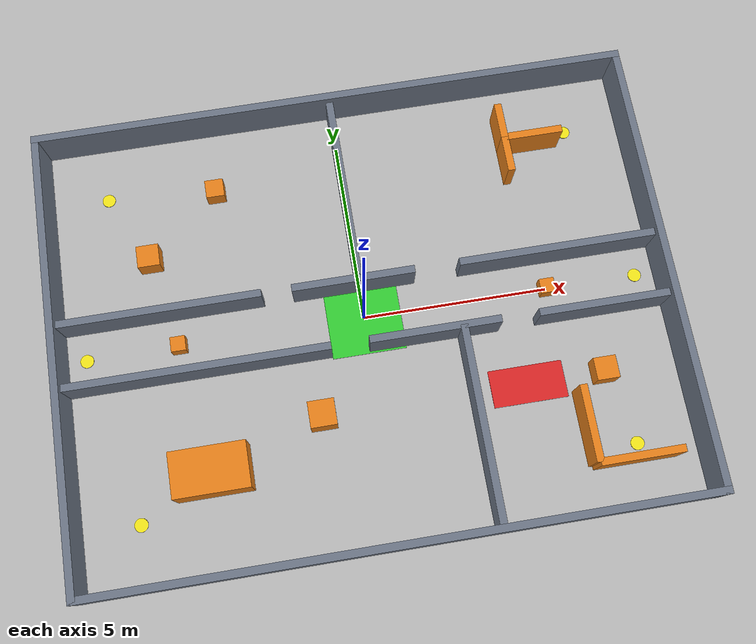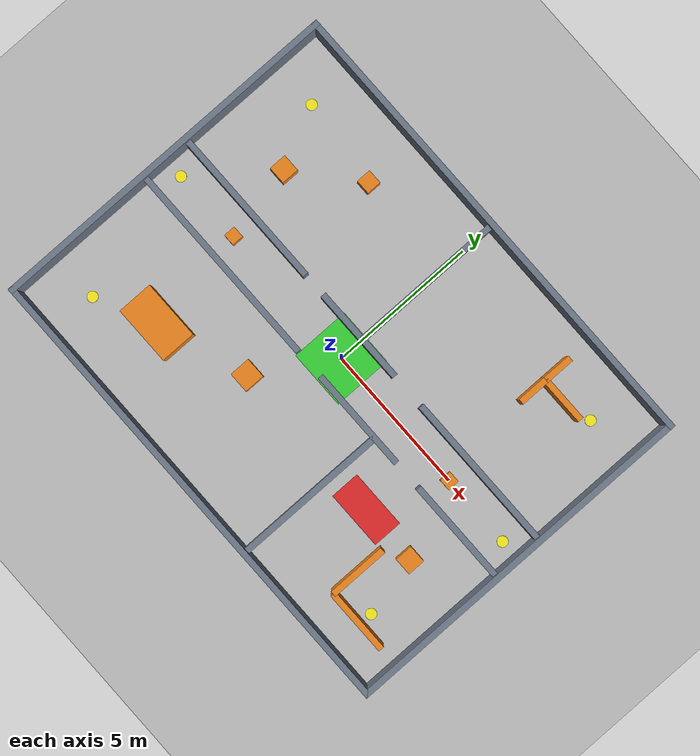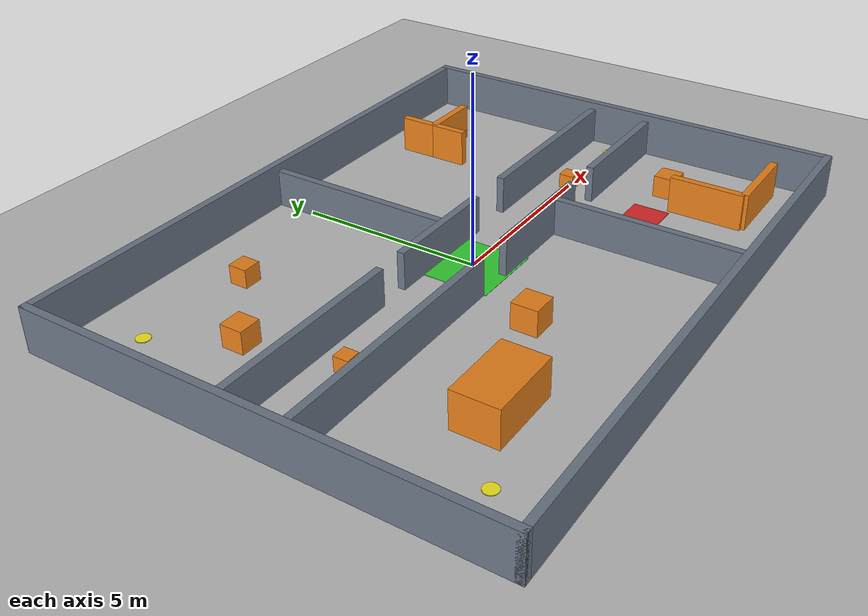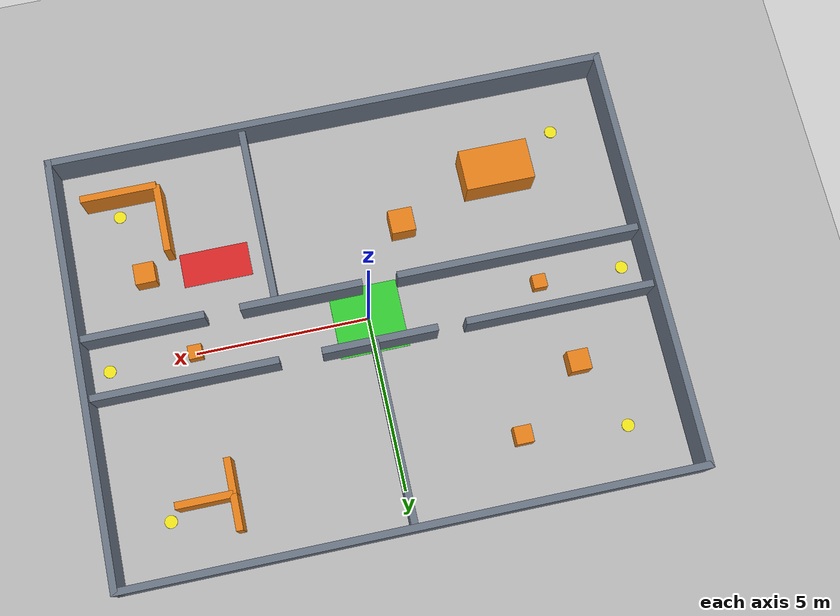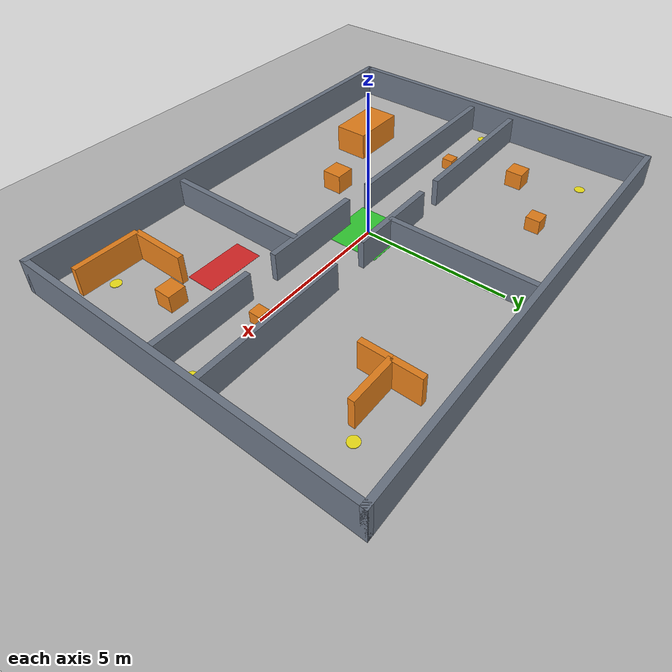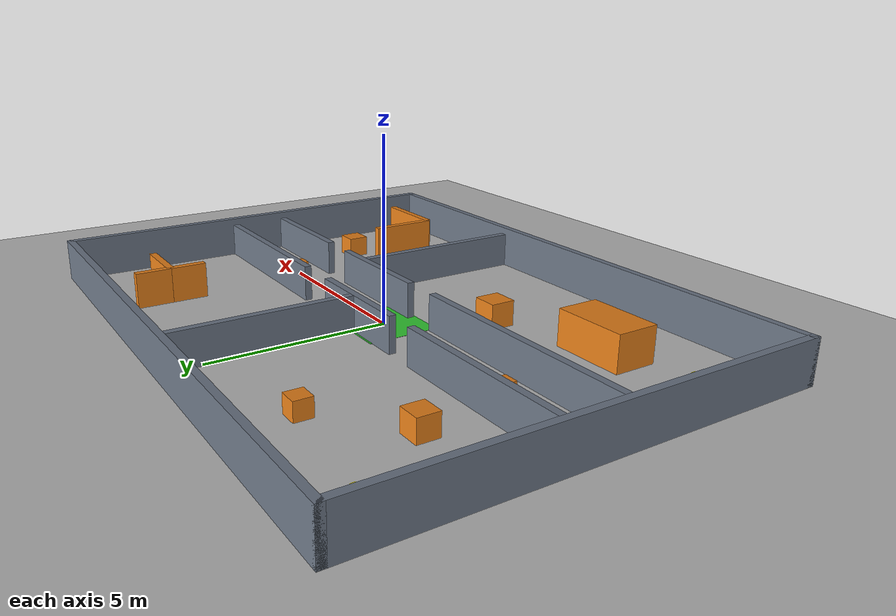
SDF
<?xml version="1.0"?>
<sdf version="1.6">
  <world name="complex_world">

    <light type="directional" name="sun">
      <cast_shadows>true</cast_shadows>
      <pose>0 0 10 0 0 0</pose>
      <diffuse>0.8 0.8 0.8 1</diffuse>
      <specular>0.2 0.2 0.2 1</specular>
      <direction>-0.5 0.1 -0.9</direction>
    </light>

    <physics type="ode">
      <max_step_size>0.001</max_step_size>
      <real_time_factor>1</real_time_factor>
      <real_time_update_rate>1000</real_time_update_rate>
    </physics>

    <!-- ================= 地面（浅灰） ================= -->
    <model name="ground_plane">
      <static>true</static>
      <link name="link">
        <collision name="collision">
          <geometry>
            <plane><normal>0 0 1</normal><size>24 20</size></plane>
          </geometry>
        </collision>
        <visual name="visual">
          <geometry>
            <plane><normal>0 0 1</normal><size>24 20</size></plane>
          </geometry>
          <material>
            <ambient>0.72 0.72 0.72 1</ambient>
            <diffuse>0.72 0.72 0.72 1</diffuse>
            <specular>0.01 0.01 0.01 1</specular>
          </material>
        </visual>
      </link>
    </model>

    <!-- ================= 四周外墙（蓝灰） ================= -->
    <model name="wall_north">
      <static>true</static>
      <pose>0 6.1 0.6 0 0 0</pose>
      <link name="link">
        <collision name="collision">
          <geometry><box><size>16.4 0.2 1.2</size></box></geometry>
        </collision>
        <visual name="visual">
          <geometry><box><size>16.4 0.2 1.2</size></box></geometry>
          <material>
            <ambient>0.42 0.46 0.52 1</ambient>
            <diffuse>0.42 0.46 0.52 1</diffuse>
          </material>
        </visual>
      </link>
    </model>
    <model name="wall_south">
      <static>true</static>
      <pose>0 -6.1 0.6 0 0 0</pose>
      <link name="link">
        <collision name="collision">
          <geometry><box><size>16.4 0.2 1.2</size></box></geometry>
        </collision>
        <visual name="visual">
          <geometry><box><size>16.4 0.2 1.2</size></box></geometry>
          <material>
            <ambient>0.42 0.46 0.52 1</ambient>
            <diffuse>0.42 0.46 0.52 1</diffuse>
          </material>
        </visual>
      </link>
    </model>
    <model name="wall_east">
      <static>true</static>
      <pose>8.1 0 0.6 0 0 0</pose>
      <link name="link">
        <collision name="collision">
          <geometry><box><size>0.2 12.4 1.2</size></box></geometry>
        </collision>
        <visual name="visual">
          <geometry><box><size>0.2 12.4 1.2</size></box></geometry>
          <material>
            <ambient>0.42 0.46 0.52 1</ambient>
            <diffuse>0.42 0.46 0.52 1</diffuse>
          </material>
        </visual>
      </link>
    </model>
    <model name="wall_west">
      <static>true</static>
      <pose>-8.1 0 0.6 0 0 0</pose>
      <link name="link">
        <collision name="collision">
          <geometry><box><size>0.2 12.4 1.2</size></box></geometry>
        </collision>
        <visual name="visual">
          <geometry><box><size>0.2 12.4 1.2</size></box></geometry>
          <material>
            <ambient>0.42 0.46 0.52 1</ambient>
            <diffuse>0.42 0.46 0.52 1</diffuse>
          </material>
        </visual>
      </link>
    </model>

    <!-- ================= 走廊上墙 A（y=0.85，内面 y=0.75，蓝灰）
         门口：R1 x∈[-2.6,-1.8]（宽 0.8，窄通道）；R2 x∈[1.5,2.7]（宽 1.2） ================= -->
    <model name="corridor_wall_a1">
      <static>true</static>
      <pose>-5.3 0.85 0.5 0 0 0</pose>
      <link name="link">
        <collision name="collision">
          <geometry><box><size>5.4 0.2 1.0</size></box></geometry>
        </collision>
        <visual name="visual">
          <geometry><box><size>5.4 0.2 1.0</size></box></geometry>
          <material>
            <ambient>0.42 0.46 0.52 1</ambient>
            <diffuse>0.42 0.46 0.52 1</diffuse>
          </material>
        </visual>
      </link>
    </model>
    <model name="corridor_wall_a2">
      <static>true</static>
      <pose>-0.15 0.85 0.5 0 0 0</pose>
      <link name="link">
        <collision name="collision">
          <geometry><box><size>3.3 0.2 1.0</size></box></geometry>
        </collision>
        <visual name="visual">
          <geometry><box><size>3.3 0.2 1.0</size></box></geometry>
          <material>
            <ambient>0.42 0.46 0.52 1</ambient>
            <diffuse>0.42 0.46 0.52 1</diffuse>
          </material>
        </visual>
      </link>
    </model>
    <model name="corridor_wall_a3">
      <static>true</static>
      <pose>5.35 0.85 0.5 0 0 0</pose>
      <link name="link">
        <collision name="collision">
          <geometry><box><size>5.3 0.2 1.0</size></box></geometry>
        </collision>
        <visual name="visual">
          <geometry><box><size>5.3 0.2 1.0</size></box></geometry>
          <material>
            <ambient>0.42 0.46 0.52 1</ambient>
            <diffuse>0.42 0.46 0.52 1</diffuse>
          </material>
        </visual>
      </link>
    </model>

    <!-- ================= 走廊下墙 B（y=-0.85，内面 y=-0.75）
         门口：R3 x∈[-1,0]（宽 1.0）；R4 x∈[3.5,4.5]（宽 1.0） ================= -->
    <model name="corridor_wall_b1">
      <static>true</static>
      <pose>-4.5 -0.85 0.5 0 0 0</pose>
      <link name="link">
        <collision name="collision">
          <geometry><box><size>7.0 0.2 1.0</size></box></geometry>
        </collision>
        <visual name="visual">
          <geometry><box><size>7.0 0.2 1.0</size></box></geometry>
          <material>
            <ambient>0.42 0.46 0.52 1</ambient>
            <diffuse>0.42 0.46 0.52 1</diffuse>
          </material>
        </visual>
      </link>
    </model>
    <model name="corridor_wall_b2">
      <static>true</static>
      <pose>1.75 -0.85 0.5 0 0 0</pose>
      <link name="link">
        <collision name="collision">
          <geometry><box><size>3.5 0.2 1.0</size></box></geometry>
        </collision>
        <visual name="visual">
          <geometry><box><size>3.5 0.2 1.0</size></box></geometry>
          <material>
            <ambient>0.42 0.46 0.52 1</ambient>
            <diffuse>0.42 0.46 0.52 1</diffuse>
          </material>
        </visual>
      </link>
    </model>
    <model name="corridor_wall_b3">
      <static>true</static>
      <pose>6.25 -0.85 0.5 0 0 0</pose>
      <link name="link">
        <collision name="collision">
          <geometry><box><size>3.5 0.2 1.0</size></box></geometry>
        </collision>
        <visual name="visual">
          <geometry><box><size>3.5 0.2 1.0</size></box></geometry>
          <material>
            <ambient>0.42 0.46 0.52 1</ambient>
            <diffuse>0.42 0.46 0.52 1</diffuse>
          </material>
        </visual>
      </link>
    </model>

    <!-- ================= 房间分隔墙（蓝灰） ================= -->
    <model name="divider_upper">
      <static>true</static>
      <pose>0 3.425 0.5 0 0 0</pose>
      <link name="link">
        <collision name="collision">
          <geometry><box><size>0.2 5.15 1.0</size></box></geometry>
        </collision>
        <visual name="visual">
          <geometry><box><size>0.2 5.15 1.0</size></box></geometry>
          <material>
            <ambient>0.42 0.46 0.52 1</ambient>
            <diffuse>0.42 0.46 0.52 1</diffuse>
          </material>
        </visual>
      </link>
    </model>
    <model name="divider_lower">
      <static>true</static>
      <pose>2.5 -3.425 0.5 0 0 0</pose>
      <link name="link">
        <collision name="collision">
          <geometry><box><size>0.2 5.15 1.0</size></box></geometry>
        </collision>
        <visual name="visual">
          <geometry><box><size>0.2 5.15 1.0</size></box></geometry>
          <material>
            <ambient>0.42 0.46 0.52 1</ambient>
            <diffuse>0.42 0.46 0.52 1</diffuse>
          </material>
        </visual>
      </link>
    </model>

    <!-- ================= U 形障碍（R2，开口朝西，橙） ================= -->
    <model name="u_obstacle_back">
      <static>true</static>
      <pose>5.4 4.2 0.5 0 0 0</pose>
      <link name="link">
        <collision name="collision">
          <geometry><box><size>1.6 0.2 1.0</size></box></geometry>
        </collision>
        <visual name="visual">
          <geometry><box><size>1.6 0.2 1.0</size></box></geometry>
          <material>
            <ambient>0.9 0.5 0.1 1</ambient>
            <diffuse>0.9 0.5 0.1 1</diffuse>
          </material>
        </visual>
      </link>
    </model>
    <model name="u_obstacle_arm_l">
      <static>true</static>
      <pose>4.6 3.7 0.5 0 0 0</pose>
      <link name="link">
        <collision name="collision">
          <geometry><box><size>0.2 1.0 1.0</size></box></geometry>
        </collision>
        <visual name="visual">
          <geometry><box><size>0.2 1.0 1.0</size></box></geometry>
          <material>
            <ambient>0.9 0.5 0.1 1</ambient>
            <diffuse>0.9 0.5 0.1 1</diffuse>
          </material>
        </visual>
      </link>
    </model>
    <model name="u_obstacle_arm_r">
      <static>true</static>
      <pose>4.6 4.7 0.5 0 0 0</pose>
      <link name="link">
        <collision name="collision">
          <geometry><box><size>0.2 1.0 1.0</size></box></geometry>
        </collision>
        <visual name="visual">
          <geometry><box><size>0.2 1.0 1.0</size></box></geometry>
          <material>
            <ambient>0.9 0.5 0.1 1</ambient>
            <diffuse>0.9 0.5 0.1 1</diffuse>
          </material>
        </visual>
      </link>
    </model>

    <!-- ================= L 形障碍（R4，橙） ================= -->
    <model name="l_obstacle_v">
      <static>true</static>
      <pose>5.2 -3.9 0.5 0 0 0</pose>
      <link name="link">
        <collision name="collision">
          <geometry><box><size>0.2 2.0 1.0</size></box></geometry>
        </collision>
        <visual name="visual">
          <geometry><box><size>0.2 2.0 1.0</size></box></geometry>
          <material>
            <ambient>0.9 0.5 0.1 1</ambient>
            <diffuse>0.9 0.5 0.1 1</diffuse>
          </material>
        </visual>
      </link>
    </model>
    <model name="l_obstacle_h">
      <static>true</static>
      <pose>6.3 -4.9 0.5 0 0 0</pose>
      <link name="link">
        <collision name="collision">
          <geometry><box><size>2.2 0.2 1.0</size></box></geometry>
        </collision>
        <visual name="visual">
          <geometry><box><size>2.2 0.2 1.0</size></box></geometry>
          <material>
            <ambient>0.9 0.5 0.1 1</ambient>
            <diffuse>0.9 0.5 0.1 1</diffuse>
          </material>
        </visual>
      </link>
    </model>

    <!-- ================= 遮挡大箱体（R3，橙；其背后形成激光遮挡区） ================= -->
    <model name="occlusion_box">
      <static>true</static>
      <pose>-4.5 -3.5 0.5 0 0 0</pose>
      <link name="link">
        <collision name="collision">
          <geometry><box><size>2.0 1.2 1.0</size></box></geometry>
        </collision>
        <visual name="visual">
          <geometry><box><size>2.0 1.2 1.0</size></box></geometry>
          <material>
            <ambient>0.9 0.5 0.1 1</ambient>
            <diffuse>0.9 0.5 0.1 1</diffuse>
          </material>
        </visual>
      </link>
    </model>

    <!-- ================= 多独立箱体（橙） ================= -->
    <model name="box_r1_a">
      <static>true</static>
      <pose>-5.5 2.5 0.3 0 0 0</pose>
      <link name="link">
        <collision name="collision">
          <geometry><box><size>0.6 0.6 0.6</size></box></geometry>
        </collision>
        <visual name="visual">
          <geometry><box><size>0.6 0.6 0.6</size></box></geometry>
          <material>
            <ambient>0.9 0.5 0.1 1</ambient>
            <diffuse>0.9 0.5 0.1 1</diffuse>
          </material>
        </visual>
      </link>
    </model>
    <model name="box_r1_b">
      <static>true</static>
      <pose>-3.5 4.2 0.25 0 0 0</pose>
      <link name="link">
        <collision name="collision">
          <geometry><box><size>0.5 0.5 0.5</size></box></geometry>
        </collision>
        <visual name="visual">
          <geometry><box><size>0.5 0.5 0.5</size></box></geometry>
          <material>
            <ambient>0.9 0.5 0.1 1</ambient>
            <diffuse>0.9 0.5 0.1 1</diffuse>
          </material>
        </visual>
      </link>
    </model>
    <model name="box_r3">
      <static>true</static>
      <pose>-1.5 -2.5 0.35 0 0 0</pose>
      <link name="link">
        <collision name="collision">
          <geometry><box><size>0.7 0.7 0.7</size></box></geometry>
        </collision>
        <visual name="visual">
          <geometry><box><size>0.7 0.7 0.7</size></box></geometry>
          <material>
            <ambient>0.9 0.5 0.1 1</ambient>
            <diffuse>0.9 0.5 0.1 1</diffuse>
          </material>
        </visual>
      </link>
    </model>
    <model name="box_r4">
      <static>true</static>
      <pose>6.0 -2.5 0.3 0 0 0</pose>
      <link name="link">
        <collision name="collision">
          <geometry><box><size>0.6 0.6 0.6</size></box></geometry>
        </collision>
        <visual name="visual">
          <geometry><box><size>0.6 0.6 0.6</size></box></geometry>
          <material>
            <ambient>0.9 0.5 0.1 1</ambient>
            <diffuse>0.9 0.5 0.1 1</diffuse>
          </material>
        </visual>
      </link>
    </model>
    <model name="box_corridor_e">
      <static>true</static>
      <pose>5.0 0.0 0.2 0 0 0</pose>
      <link name="link">
        <collision name="collision">
          <geometry><box><size>0.4 0.4 0.4</size></box></geometry>
        </collision>
        <visual name="visual">
          <geometry><box><size>0.4 0.4 0.4</size></box></geometry>
          <material>
            <ambient>0.9 0.5 0.1 1</ambient>
            <diffuse>0.9 0.5 0.1 1</diffuse>
          </material>
        </visual>
      </link>
    </model>
    <model name="box_corridor_w">
      <static>true</static>
      <pose>-5.0 0.0 0.2 0 0 0</pose>
      <link name="link">
        <collision name="collision">
          <geometry><box><size>0.4 0.4 0.4</size></box></geometry>
        </collision>
        <visual name="visual">
          <geometry><box><size>0.4 0.4 0.4</size></box></geometry>
          <material>
            <ambient>0.9 0.5 0.1 1</ambient>
            <diffuse>0.9 0.5 0.1 1</diffuse>
          </material>
        </visual>
      </link>
    </model>

    <!-- ================= 危险区（R4，红，无碰撞） ================= -->
    <model name="danger_zone">
      <static>true</static>
      <pose>4.0 -2.5 0.005 0 0 0</pose>
      <link name="link">
        <visual name="visual">
          <geometry><box><size>2.0 1.0 0.01</size></box></geometry>
          <material>
            <ambient>0.85 0.15 0.15 1</ambient>
            <diffuse>0.85 0.15 0.15 1</diffuse>
          </material>
        </visual>
      </link>
    </model>

    <!-- ================= 起点区（绿，无碰撞） ================= -->
    <model name="start_area">
      <static>true</static>
      <pose>0 0 0.005 0 0 0</pose>
      <link name="link">
        <visual name="visual">
          <geometry><box><size>2.0 2.0 0.01</size></box></geometry>
          <material>
            <ambient>0.2 0.8 0.2 1</ambient>
            <diffuse>0.2 0.8 0.2 1</diffuse>
          </material>
        </visual>
      </link>
    </model>

    <!-- ================= 目标区 G1-G6（黄，无碰撞薄圆柱） ================= -->
    <model name="goal_1">
      <static>true</static>
      <pose>6.5 4.5 0.01 0 0 0</pose>
      <link name="link">
        <visual name="visual">
          <geometry><cylinder><radius>0.18</radius><length>0.02</length></cylinder></geometry>
          <material>
            <ambient>0.95 0.9 0.1 1</ambient>
            <diffuse>0.95 0.9 0.1 1</diffuse>
          </material>
        </visual>
      </link>
    </model>
    <model name="goal_2">
      <static>true</static>
      <pose>-6.5 4.5 0.01 0 0 0</pose>
      <link name="link">
        <visual name="visual">
          <geometry><cylinder><radius>0.18</radius><length>0.02</length></cylinder></geometry>
          <material>
            <ambient>0.95 0.9 0.1 1</ambient>
            <diffuse>0.95 0.9 0.1 1</diffuse>
          </material>
        </visual>
      </link>
    </model>
    <model name="goal_3">
      <static>true</static>
      <pose>-6.5 -4.5 0.01 0 0 0</pose>
      <link name="link">
        <visual name="visual">
          <geometry><cylinder><radius>0.18</radius><length>0.02</length></cylinder></geometry>
          <material>
            <ambient>0.95 0.9 0.1 1</ambient>
            <diffuse>0.95 0.9 0.1 1</diffuse>
          </material>
        </visual>
      </link>
    </model>
    <model name="goal_4">
      <static>true</static>
      <pose>6.5 -4.5 0.01 0 0 0</pose>
      <link name="link">
        <visual name="visual">
          <geometry><cylinder><radius>0.18</radius><length>0.02</length></cylinder></geometry>
          <material>
            <ambient>0.95 0.9 0.1 1</ambient>
            <diffuse>0.95 0.9 0.1 1</diffuse>
          </material>
        </visual>
      </link>
    </model>
    <model name="goal_5">
      <static>true</static>
      <pose>-7.5 0 0.01 0 0 0</pose>
      <link name="link">
        <visual name="visual">
          <geometry><cylinder><radius>0.18</radius><length>0.02</length></cylinder></geometry>
          <material>
            <ambient>0.95 0.9 0.1 1</ambient>
            <diffuse>0.95 0.9 0.1 1</diffuse>
          </material>
        </visual>
      </link>
    </model>
    <model name="goal_6">
      <static>true</static>
      <pose>7.5 0 0.01 0 0 0</pose>
      <link name="link">
        <visual name="visual">
          <geometry><cylinder><radius>0.18</radius><length>0.02</length></cylinder></geometry>
          <material>
            <ambient>0.95 0.9 0.1 1</ambient>
            <diffuse>0.95 0.9 0.1 1</diffuse>
          </material>
        </visual>
      </link>
    </model>

  </world>
</sdf>
